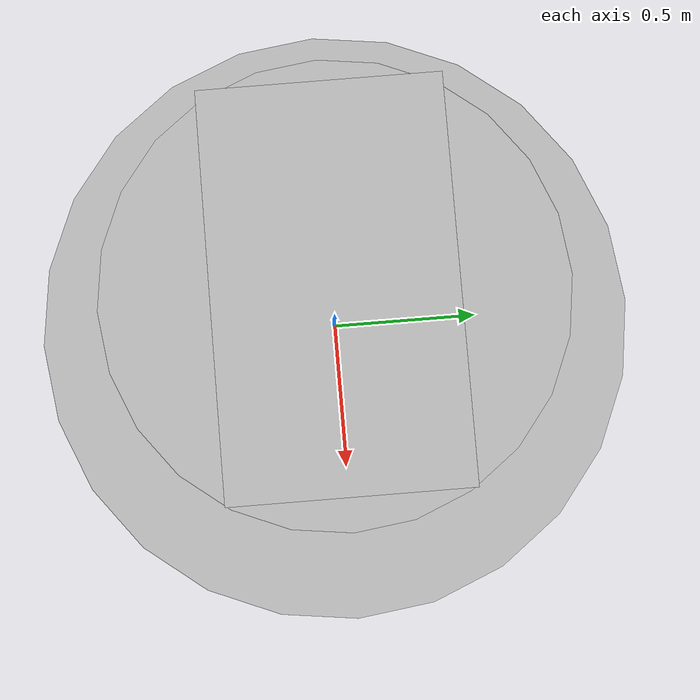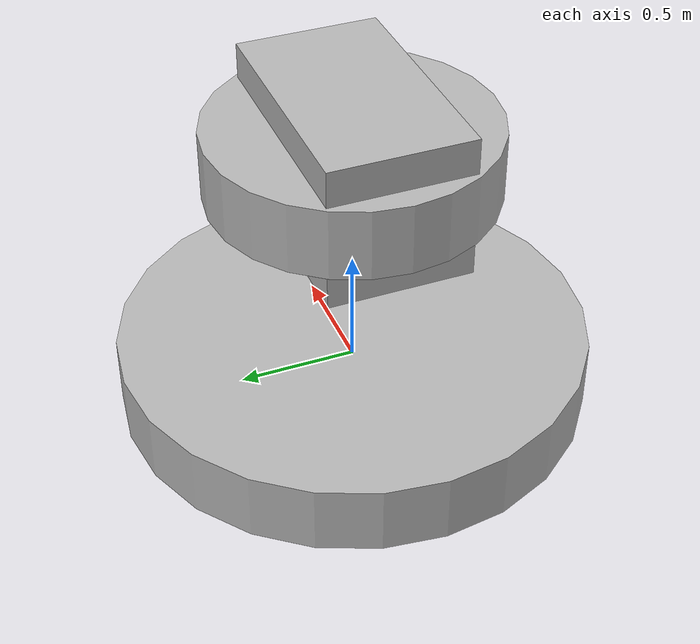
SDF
<?xml version='1.0'?>
<sdf version='1.4'>
    <model name="scara">
        <static>true</static>
        <link name='base_link'>
            <pose>0 0 0 0 0 0</pose>

            <collision name='collision'>
                <geometry>
                    <cylinder>
                        <radius>1</radius>
                        <length>.3</length>
                    </cylinder>
                </geometry>
            </collision>

            <visual name='visual'>
                <geometry>
                    <cylinder>
                        <radius>1</radius>
                        <length>.3</length>
                    </cylinder>
                </geometry>
            </visual>
        </link>

        <link name='link1b'>
            <pose>0 0 1 0 0 0</pose>

            <collision name='collision'>
                <geometry>
                    <cylinder>
                        <radius>.6</radius>
                        <length>.3</length>
                    </cylinder>
                </geometry>
            </collision>

            <visual name='visual'>
                <geometry>
                    <cylinder>
                        <radius>.6</radius>
                        <length>.3</length>
                    </cylinder>
                </geometry>
            </visual>
        </link>

        <link name='link1'>
            <pose>0 0 1 0 0 0</pose>

            <collision name='collision'>
                <geometry>
                    <box>
                        <size>1 .6 .6</size>
                    </box>
                </geometry>
            </collision>

            <visual name='visual'>
                <geometry>
                    <box>
                        <size>1 .6 .6</size>
                    </box>
                </geometry>
            </visual>
        </link>
    </model>
</sdf>
